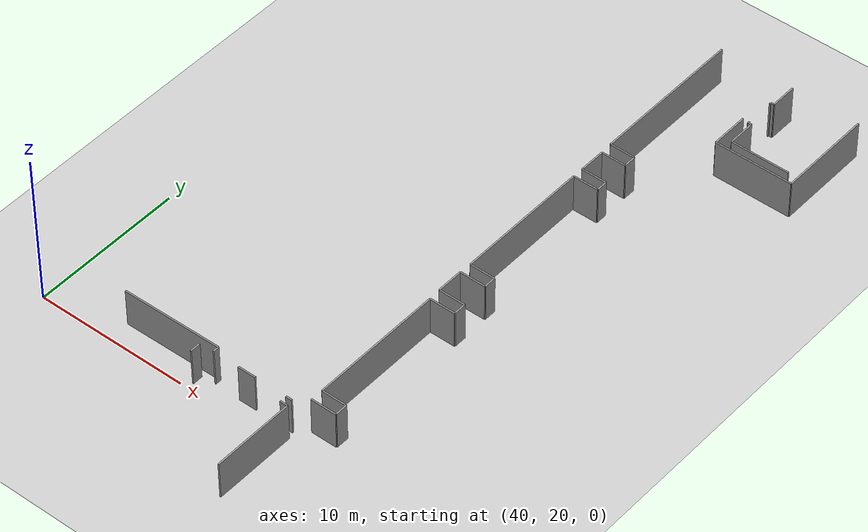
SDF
<sdf version="1.6">
 <world name="default">
  <model name="ground_plane">
   <static>1</static>
   <link name="link">
    <collision name="collision">
     <geometry><plane><normal>0 0 1</normal><size>100 100</size></plane></geometry>
     <surface><friction><ode><mu>100</mu><mu2>50</mu2></ode></friction></surface>
    </collision>
    <visual name="visual">
     <cast_shadows>0</cast_shadows>
     <geometry><plane><normal>0 0 1</normal><size>100 100</size></plane></geometry>
     <material>
      <script><uri>file://media/materials/scripts/gazebo.material</uri><name>Gazebo/Grey</name></script>
     </material>
    </visual>
   </link>
  </model>
  <model name="50036893">
   <static>1</static>
   <link name="Wall_304">
    <collision name="Wall_304_Collision">
     <geometry><box><size>10.129789433 0.1 2.5</size></box></geometry>
     <pose>5.06489471649 0 1.25 0 0 0</pose>
    </collision>
    <visual name="Wall_304_Visual">
     <pose>5.06489471649 0 1.25 0 0 0</pose>
     <geometry><box><size>10.129789433 0.1 2.5</size></box></geometry>
     <material>
      <script><uri>file://media/materials/scripts/gazebo.material</uri><name>Gazebo/Grey</name></script>
      <ambient>1 1 1 1</ambient>
     </material>
    </visual>
    <pose>131.90030244 -21.0097833461 0 0 0 1.57079632679</pose>
   </link>
   <link name="Wall_308">
    <collision name="Wall_308_Collision">
     <geometry><box><size>2.4933266547 0.1 2.5</size></box></geometry>
     <pose>1.24666332735 0 1.25 0 0 0</pose>
    </collision>
    <visual name="Wall_308_Visual">
     <pose>1.24666332735 0 1.25 0 0 0</pose>
     <geometry><box><size>2.4933266547 0.1 2.5</size></box></geometry>
     <material>
      <script><uri>file://media/materials/scripts/gazebo.material</uri><name>Gazebo/Grey</name></script>
      <ambient>1 1 1 1</ambient>
     </material>
    </visual>
    <pose>136.265082394 -14.6946746388 0 0 0 -1.57079632679</pose>
   </link>
   <link name="Wall_309">
    <collision name="Wall_309_Collision">
     <geometry><box><size>5.1586068718 0.1 2.5</size></box></geometry>
     <pose>2.5793034359 0 1.25 0 0 0</pose>
    </collision>
    <visual name="Wall_309_Visual">
     <pose>2.5793034359 0 1.25 0 0 0</pose>
     <geometry><box><size>5.1586068718 0.1 2.5</size></box></geometry>
     <material>
      <script><uri>file://media/materials/scripts/gazebo.material</uri><name>Gazebo/Grey</name></script>
      <ambient>1 1 1 1</ambient>
     </material>
    </visual>
    <pose>136.265082394 -17.1880012935 0 0 0 0.0</pose>
   </link>
   <link name="Wall_310">
    <collision name="Wall_310_Collision">
     <geometry><box><size>6.24992866971 0.1 2.5</size></box></geometry>
     <pose>3.12496433485 0 1.25 0 0 0</pose>
    </collision>
    <visual name="Wall_310_Visual">
     <pose>3.12496433485 0 1.25 0 0 0</pose>
     <geometry><box><size>6.24992866971 0.1 2.5</size></box></geometry>
     <material>
      <script><uri>file://media/materials/scripts/gazebo.material</uri><name>Gazebo/Grey</name></script>
      <ambient>1 1 1 1</ambient>
     </material>
    </visual>
    <pose>141.423689266 -17.1880012935 0 0 0 1.57079632679</pose>
   </link>
   <link name="Wall_352">
    <collision name="Wall_352_Collision">
     <geometry><box><size>1.70939087099 0.1 2.5</size></box></geometry>
     <pose>0.854695435495 0 1.25 0 0 0</pose>
    </collision>
    <visual name="Wall_352_Visual">
     <pose>0.854695435495 0 1.25 0 0 0</pose>
     <geometry><box><size>1.70939087099 0.1 2.5</size></box></geometry>
     <material>
      <script><uri>file://media/materials/scripts/gazebo.material</uri><name>Gazebo/Grey</name></script>
      <ambient>1 1 1 1</ambient>
     </material>
    </visual>
    <pose>131.880012935 -46.0754389191 0 0 0 0.0</pose>
   </link>
   <link name="Wall_353">
    <collision name="Wall_353_Collision">
     <geometry><box><size>0.822232226076 0.1 2.5</size></box></geometry>
     <pose>0.411116113038 0 1.25 0 0 0</pose>
    </collision>
    <visual name="Wall_353_Visual">
     <pose>0.411116113038 0 1.25 0 0 0</pose>
     <geometry><box><size>0.822232226076 0.1 2.5</size></box></geometry>
     <material>
      <script><uri>file://media/materials/scripts/gazebo.material</uri><name>Gazebo/Grey</name></script>
      <ambient>1 1 1 1</ambient>
     </material>
    </visual>
    <pose>133.589403806 -46.0754389191 0 0 0 1.57079632679</pose>
   </link>
   <link name="Wall_354">
    <collision name="Wall_354_Collision">
     <geometry><box><size>1.65613091804 0.1 2.5</size></box></geometry>
     <pose>0.828065459018 0 1.25 0 0 0</pose>
    </collision>
    <visual name="Wall_354_Visual">
     <pose>0.828065459018 0 1.25 0 0 0</pose>
     <geometry><box><size>1.65613091804 0.1 2.5</size></box></geometry>
     <material>
      <script><uri>file://media/materials/scripts/gazebo.material</uri><name>Gazebo/Grey</name></script>
      <ambient>1 1 1 1</ambient>
     </material>
    </visual>
    <pose>133.589403806 -45.253206693 0 0 0 3.14159265359</pose>
   </link>
   <link name="Wall_355">
    <collision name="Wall_355_Collision">
     <geometry><box><size>8.71510363499 0.1 2.5</size></box></geometry>
     <pose>4.3575518175 0 1.25 0 0 0</pose>
    </collision>
    <visual name="Wall_355_Visual">
     <pose>4.3575518175 0 1.25 0 0 0</pose>
     <geometry><box><size>8.71510363499 0.1 2.5</size></box></geometry>
     <material>
      <script><uri>file://media/materials/scripts/gazebo.material</uri><name>Gazebo/Grey</name></script>
      <ambient>1 1 1 1</ambient>
     </material>
    </visual>
    <pose>131.933272888 -45.253206693 0 0 0 1.57079632679</pose>
   </link>
   <link name="Wall_356">
    <collision name="Wall_356_Collision">
     <geometry><box><size>1.70178230628 0.1 2.5</size></box></geometry>
     <pose>0.850891153141 0 1.25 0 0 0</pose>
    </collision>
    <visual name="Wall_356_Visual">
     <pose>0.850891153141 0 1.25 0 0 0</pose>
     <geometry><box><size>1.70178230628 0.1 2.5</size></box></geometry>
     <material>
      <script><uri>file://media/materials/scripts/gazebo.material</uri><name>Gazebo/Grey</name></script>
      <ambient>1 1 1 1</ambient>
     </material>
    </visual>
    <pose>131.933272888 -36.538103058 0 0 0 0.0</pose>
   </link>
   <link name="Wall_357">
    <collision name="Wall_357_Collision">
     <geometry><box><size>0.824514795488 0.1 2.5</size></box></geometry>
     <pose>0.412257397744 0 1.25 0 0 0</pose>
    </collision>
    <visual name="Wall_357_Visual">
     <pose>0.412257397744 0 1.25 0 0 0</pose>
     <geometry><box><size>0.824514795488 0.1 2.5</size></box></geometry>
     <material>
      <script><uri>file://media/materials/scripts/gazebo.material</uri><name>Gazebo/Grey</name></script>
      <ambient>1 1 1 1</ambient>
     </material>
    </visual>
    <pose>133.635055194 -36.538103058 0 0 0 1.57079632679</pose>
   </link>
   <link name="Wall_358">
    <collision name="Wall_358_Collision">
     <geometry><box><size>1.74489750629 0.1 2.5</size></box></geometry>
     <pose>0.872448753146 0 1.25 0 0 0</pose>
    </collision>
    <visual name="Wall_358_Visual">
     <pose>0.872448753146 0 1.25 0 0 0</pose>
     <geometry><box><size>1.74489750629 0.1 2.5</size></box></geometry>
     <material>
      <script><uri>file://media/materials/scripts/gazebo.material</uri><name>Gazebo/Grey</name></script>
      <ambient>1 1 1 1</ambient>
     </material>
    </visual>
    <pose>133.635055194 -35.7135882625 0 0 0 3.14159265359</pose>
   </link>
   <link name="Wall_359">
    <collision name="Wall_359_Collision">
     <geometry><box><size>1.74515112512 0.1 2.5</size></box></geometry>
     <pose>0.872575562558 0 1.25 0 0 0</pose>
    </collision>
    <visual name="Wall_359_Visual">
     <pose>0.872575562558 0 1.25 0 0 0</pose>
     <geometry><box><size>1.74515112512 0.1 2.5</size></box></geometry>
     <material>
      <script><uri>file://media/materials/scripts/gazebo.material</uri><name>Gazebo/Grey</name></script>
      <ambient>1 1 1 1</ambient>
     </material>
    </visual>
    <pose>131.890157688 -35.7135882625 0 0 0 1.57079632679</pose>
   </link>
   <link name="Wall_360">
    <collision name="Wall_360_Collision">
     <geometry><box><size>1.70685468275 0.1 2.5</size></box></geometry>
     <pose>0.853427341377 0 1.25 0 0 0</pose>
    </collision>
    <visual name="Wall_360_Visual">
     <pose>0.853427341377 0 1.25 0 0 0</pose>
     <geometry><box><size>1.70685468275 0.1 2.5</size></box></geometry>
     <material>
      <script><uri>file://media/materials/scripts/gazebo.material</uri><name>Gazebo/Grey</name></script>
      <ambient>1 1 1 1</ambient>
     </material>
    </visual>
    <pose>131.890157688 -33.9684371374 0 0 0 0.0</pose>
   </link>
   <link name="Wall_361">
    <collision name="Wall_361_Collision">
     <geometry><box><size>0.786218353126 0.1 2.5</size></box></geometry>
     <pose>0.393109176563 0 1.25 0 0 0</pose>
    </collision>
    <visual name="Wall_361_Visual">
     <pose>0.393109176563 0 1.25 0 0 0</pose>
     <geometry><box><size>0.786218353126 0.1 2.5</size></box></geometry>
     <material>
      <script><uri>file://media/materials/scripts/gazebo.material</uri><name>Gazebo/Grey</name></script>
      <ambient>1 1 1 1</ambient>
     </material>
    </visual>
    <pose>133.59701237 -33.9684371374 0 0 0 1.57079632679</pose>
   </link>
   <link name="Wall_362">
    <collision name="Wall_362_Collision">
     <geometry><box><size>1.66881185922 0.1 2.5</size></box></geometry>
     <pose>0.834405929608 0 1.25 0 0 0</pose>
    </collision>
    <visual name="Wall_362_Visual">
     <pose>0.834405929608 0 1.25 0 0 0</pose>
     <geometry><box><size>1.66881185922 0.1 2.5</size></box></geometry>
     <material>
      <script><uri>file://media/materials/scripts/gazebo.material</uri><name>Gazebo/Grey</name></script>
      <ambient>1 1 1 1</ambient>
     </material>
    </visual>
    <pose>133.59701237 -33.1822187843 0 0 0 3.14159265359</pose>
   </link>
   <link name="Wall_363">
    <collision name="Wall_363_Collision">
     <geometry><box><size>8.87437625621 0.1 2.5</size></box></geometry>
     <pose>4.4371881281 0 1.25 0 0 0</pose>
    </collision>
    <visual name="Wall_363_Visual">
     <pose>4.4371881281 0 1.25 0 0 0</pose>
     <geometry><box><size>8.87437625621 0.1 2.5</size></box></geometry>
     <material>
      <script><uri>file://media/materials/scripts/gazebo.material</uri><name>Gazebo/Grey</name></script>
      <ambient>1 1 1 1</ambient>
     </material>
    </visual>
    <pose>131.928200511 -33.1822187843 0 0 0 1.57079632679</pose>
   </link>
   <link name="Wall_364">
    <collision name="Wall_364_Collision">
     <geometry><box><size>1.66627567098 0.1 2.5</size></box></geometry>
     <pose>0.83313783549 0 1.25 0 0 0</pose>
    </collision>
    <visual name="Wall_364_Visual">
     <pose>0.83313783549 0 1.25 0 0 0</pose>
     <geometry><box><size>1.66627567098 0.1 2.5</size></box></geometry>
     <material>
      <script><uri>file://media/materials/scripts/gazebo.material</uri><name>Gazebo/Grey</name></script>
      <ambient>1 1 1 1</ambient>
     </material>
    </visual>
    <pose>131.928200511 -24.3078425281 0 0 0 0.0</pose>
   </link>
   <link name="Wall_365">
    <collision name="Wall_365_Collision">
     <geometry><box><size>0.725096216641 0.1 2.5</size></box></geometry>
     <pose>0.362548108321 0 1.25 0 0 0</pose>
    </collision>
    <visual name="Wall_365_Visual">
     <pose>0.362548108321 0 1.25 0 0 0</pose>
     <geometry><box><size>0.725096216641 0.1 2.5</size></box></geometry>
     <material>
      <script><uri>file://media/materials/scripts/gazebo.material</uri><name>Gazebo/Grey</name></script>
      <ambient>1 1 1 1</ambient>
     </material>
    </visual>
    <pose>133.594476182 -24.3078425281 0 0 0 1.57079632679</pose>
   </link>
   <link name="Wall_366">
    <collision name="Wall_366_Collision">
     <geometry><box><size>1.6535947298 0.1 2.5</size></box></geometry>
     <pose>0.8267973649 0 1.25 0 0 0</pose>
    </collision>
    <visual name="Wall_366_Visual">
     <pose>0.8267973649 0 1.25 0 0 0</pose>
     <geometry><box><size>1.6535947298 0.1 2.5</size></box></geometry>
     <material>
      <script><uri>file://media/materials/scripts/gazebo.material</uri><name>Gazebo/Grey</name></script>
      <ambient>1 1 1 1</ambient>
     </material>
    </visual>
    <pose>133.594476182 -23.5827463114 0 0 0 3.14159265359</pose>
   </link>
   <link name="Wall_367">
    <collision name="Wall_367_Collision">
     <geometry><box><size>1.74007874864 0.1 2.5</size></box></geometry>
     <pose>0.870039374322 0 1.25 0 0 0</pose>
    </collision>
    <visual name="Wall_367_Visual">
     <pose>0.870039374322 0 1.25 0 0 0</pose>
     <geometry><box><size>1.74007874864 0.1 2.5</size></box></geometry>
     <material>
      <script><uri>file://media/materials/scripts/gazebo.material</uri><name>Gazebo/Grey</name></script>
      <ambient>1 1 1 1</ambient>
     </material>
    </visual>
    <pose>131.940881452 -23.5827463114 0 0 0 1.57079632679</pose>
   </link>
   <link name="Wall_368">
    <collision name="Wall_368_Collision">
     <geometry><box><size>1.62316047097 0.1 2.5</size></box></geometry>
     <pose>0.811580235485 0 1.25 0 0 0</pose>
    </collision>
    <visual name="Wall_368_Visual">
     <pose>0.811580235485 0 1.25 0 0 0</pose>
     <geometry><box><size>1.62316047097 0.1 2.5</size></box></geometry>
     <material>
      <script><uri>file://media/materials/scripts/gazebo.material</uri><name>Gazebo/Grey</name></script>
      <ambient>1 1 1 1</ambient>
     </material>
    </visual>
    <pose>131.940881452 -21.8426675628 0 0 0 0.0</pose>
   </link>
   <link name="Wall_369">
    <collision name="Wall_369_Collision">
     <geometry><box><size>0.812087473132 0.1 2.5</size></box></geometry>
     <pose>0.406043736566 0 1.25 0 0 0</pose>
    </collision>
    <visual name="Wall_369_Visual">
     <pose>0.406043736566 0 1.25 0 0 0</pose>
     <geometry><box><size>0.812087473132 0.1 2.5</size></box></geometry>
     <material>
      <script><uri>file://media/materials/scripts/gazebo.material</uri><name>Gazebo/Grey</name></script>
      <ambient>1 1 1 1</ambient>
     </material>
    </visual>
    <pose>133.564041923 -21.8426675628 0 0 0 1.57079632679</pose>
   </link>
   <link name="Wall_370">
    <collision name="Wall_370_Collision">
     <geometry><box><size>1.66386945731 0.1 2.5</size></box></geometry>
     <pose>0.831934728657 0 1.25 0 0 0</pose>
    </collision>
    <visual name="Wall_370_Visual">
     <pose>0.831934728657 0 1.25 0 0 0</pose>
     <geometry><box><size>1.66386945731 0.1 2.5</size></box></geometry>
     <material>
      <script><uri>file://media/materials/scripts/gazebo.material</uri><name>Gazebo/Grey</name></script>
      <ambient>1 1 1 1</ambient>
     </material>
    </visual>
    <pose>133.564041923 -21.0305800897 0 0 0 3.12909330457</pose>
   </link>
   <link name="Wall_462">
    <collision name="Wall_462_Collision">
     <geometry><box><size>0.502165270706 0.1 2.5</size></box></geometry>
     <pose>0.251082635353 0 1.25 0 0 0</pose>
    </collision>
    <visual name="Wall_462_Visual">
     <pose>0.251082635353 0 1.25 0 0 0</pose>
     <geometry><box><size>0.502165270706 0.1 2.5</size></box></geometry>
     <material>
      <script><uri>file://media/materials/scripts/gazebo.material</uri><name>Gazebo/Grey</name></script>
      <ambient>1 1 1 1</ambient>
     </material>
    </visual>
    <pose>130.753945358 -47.2048035405 0 0 0 0.0</pose>
   </link>
   <link name="Wall_463">
    <collision name="Wall_463_Collision">
     <geometry><box><size>5.33588642949 0.1 2.5</size></box></geometry>
     <pose>2.66794321475 0 1.25 0 0 0</pose>
    </collision>
    <visual name="Wall_463_Visual">
     <pose>2.66794321475 0 1.25 0 0 0</pose>
     <geometry><box><size>5.33588642949 0.1 2.5</size></box></geometry>
     <material>
      <script><uri>file://media/materials/scripts/gazebo.material</uri><name>Gazebo/Grey</name></script>
      <ambient>1 1 1 1</ambient>
     </material>
    </visual>
    <pose>131.256110629 -47.2048035405 0 0 0 -1.57079632679</pose>
   </link>
   <link name="Wall_471">
    <collision name="Wall_471_Collision">
     <geometry><box><size>0.415934870686 0.1 2.5</size></box></geometry>
     <pose>0.207967435343 0 1.25 0 0 0</pose>
    </collision>
    <visual name="Wall_471_Visual">
     <pose>0.207967435343 0 1.25 0 0 0</pose>
     <geometry><box><size>0.415934870686 0.1 2.5</size></box></geometry>
     <material>
      <script><uri>file://media/materials/scripts/gazebo.material</uri><name>Gazebo/Grey</name></script>
      <ambient>1 1 1 1</ambient>
     </material>
    </visual>
    <pose>131.169880229 -46.7624923122 0 0 0 3.14159265359</pose>
   </link>
   <link name="Wall_472">
    <collision name="Wall_472_Collision">
     <geometry><box><size>1.1945446591 0.1 2.5</size></box></geometry>
     <pose>0.597272329552 0 1.25 0 0 0</pose>
    </collision>
    <visual name="Wall_472_Visual">
     <pose>0.597272329552 0 1.25 0 0 0</pose>
     <geometry><box><size>1.1945446591 0.1 2.5</size></box></geometry>
     <material>
      <script><uri>file://media/materials/scripts/gazebo.material</uri><name>Gazebo/Grey</name></script>
      <ambient>1 1 1 1</ambient>
     </material>
    </visual>
    <pose>128.633691993 -46.7624923122 0 0 0 3.14159265359</pose>
   </link>
   <link name="Wall_473">
    <collision name="Wall_473_Collision">
     <geometry><box><size>0.390826607151 0.1 2.5</size></box></geometry>
     <pose>0.195413303575 0 1.25 0 0 0</pose>
    </collision>
    <visual name="Wall_473_Visual">
     <pose>0.195413303575 0 1.25 0 0 0</pose>
     <geometry><box><size>0.390826607151 0.1 2.5</size></box></geometry>
     <material>
      <script><uri>file://media/materials/scripts/gazebo.material</uri><name>Gazebo/Grey</name></script>
      <ambient>1 1 1 1</ambient>
     </material>
    </visual>
    <pose>125.694249827 -46.7624923122 0 0 0 1.57079632679</pose>
   </link>
   <link name="Wall_474">
    <collision name="Wall_474_Collision">
     <geometry><box><size>6.59437978097 0.1 2.5</size></box></geometry>
     <pose>3.29718989048 0 1.25 0 0 0</pose>
    </collision>
    <visual name="Wall_474_Visual">
     <pose>3.29718989048 0 1.25 0 0 0</pose>
     <geometry><box><size>6.59437978097 0.1 2.5</size></box></geometry>
     <material>
      <script><uri>file://media/materials/scripts/gazebo.material</uri><name>Gazebo/Grey</name></script>
      <ambient>1 1 1 1</ambient>
     </material>
    </visual>
    <pose>125.694249827 -46.371665705 0 0 0 -3.13220831369</pose>
   </link>
   <link name="Wall_477">
    <collision name="Wall_477_Collision">
     <geometry><box><size>0.667017506039 0.1 2.5</size></box></geometry>
     <pose>0.33350875302 0 1.25 0 0 0</pose>
    </collision>
    <visual name="Wall_477_Visual">
     <pose>0.33350875302 0 1.25 0 0 0</pose>
     <geometry><box><size>0.667017506039 0.1 2.5</size></box></geometry>
     <material>
      <script><uri>file://media/materials/scripts/gazebo.material</uri><name>Gazebo/Grey</name></script>
      <ambient>1 1 1 1</ambient>
     </material>
    </visual>
    <pose>124.763468745 -46.827418731 0 0 0 -1.57079632679</pose>
   </link>
   <link name="Wall_512">
    <collision name="Wall_512_Collision">
     <geometry><box><size>1.79054889454 0.1 2.5</size></box></geometry>
     <pose>0.895274447269 0 1.25 0 0 0</pose>
    </collision>
    <visual name="Wall_512_Visual">
     <pose>0.895274447269 0 1.25 0 0 0</pose>
     <geometry><box><size>1.79054889454 0.1 2.5</size></box></geometry>
     <material>
      <script><uri>file://media/materials/scripts/gazebo.material</uri><name>Gazebo/Grey</name></script>
      <ambient>1 1 1 1</ambient>
     </material>
    </visual>
    <pose>136.906738018 -16.5838812557 0 0 0 1.57079632679</pose>
   </link>
   <link name="Wall_513">
    <collision name="Wall_513_Collision">
     <geometry><box><size>0.22825694123 0.1 2.5</size></box></geometry>
     <pose>0.114128470615 0 1.25 0 0 0</pose>
    </collision>
    <visual name="Wall_513_Visual">
     <pose>0.114128470615 0 1.25 0 0 0</pose>
     <geometry><box><size>0.22825694123 0.1 2.5</size></box></geometry>
     <material>
      <script><uri>file://media/materials/scripts/gazebo.material</uri><name>Gazebo/Grey</name></script>
      <ambient>1 1 1 1</ambient>
     </material>
    </visual>
    <pose>136.906738018 -14.7933323611 0 0 0 3.14159265359</pose>
   </link>
   <link name="Wall_514">
    <collision name="Wall_514_Collision">
     <geometry><box><size>0.126048555324 0.1 2.5</size></box></geometry>
     <pose>0.0630242776619 0 1.25 0 0 0</pose>
    </collision>
    <visual name="Wall_514_Visual">
     <pose>0.0630242776619 0 1.25 0 0 0</pose>
     <geometry><box><size>0.126048555324 0.1 2.5</size></box></geometry>
     <material>
      <script><uri>file://media/materials/scripts/gazebo.material</uri><name>Gazebo/Grey</name></script>
      <ambient>1 1 1 1</ambient>
     </material>
    </visual>
    <pose>136.678481077 -14.7933323611 0 0 0 1.57079632679</pose>
   </link>
   <link name="Wall_515">
    <collision name="Wall_515_Collision">
     <geometry><box><size>0.109056094143 0.1 2.5</size></box></geometry>
     <pose>0.0545280470716 0 1.25 0 0 0</pose>
    </collision>
    <visual name="Wall_515_Visual">
     <pose>0.0545280470716 0 1.25 0 0 0</pose>
     <geometry><box><size>0.109056094143 0.1 2.5</size></box></geometry>
     <material>
      <script><uri>file://media/materials/scripts/gazebo.material</uri><name>Gazebo/Grey</name></script>
      <ambient>1 1 1 1</ambient>
     </material>
    </visual>
    <pose>136.678481077 -12.7816278524 0 0 0 1.57079632679</pose>
   </link>
   <link name="Wall_516">
    <collision name="Wall_516_Collision">
     <geometry><box><size>0.220648376522 0.1 2.5</size></box></geometry>
     <pose>0.110324188261 0 1.25 0 0 0</pose>
    </collision>
    <visual name="Wall_516_Visual">
     <pose>0.110324188261 0 1.25 0 0 0</pose>
     <geometry><box><size>0.220648376522 0.1 2.5</size></box></geometry>
     <material>
      <script><uri>file://media/materials/scripts/gazebo.material</uri><name>Gazebo/Grey</name></script>
      <ambient>1 1 1 1</ambient>
     </material>
    </visual>
    <pose>136.678481077 -12.6725717583 0 0 0 0.0</pose>
   </link>
   <link name="Wall_517">
    <collision name="Wall_517_Collision">
     <geometry><box><size>1.739571511 0.1 2.5</size></box></geometry>
     <pose>0.869785755499 0 1.25 0 0 0</pose>
    </collision>
    <visual name="Wall_517_Visual">
     <pose>0.869785755499 0 1.25 0 0 0</pose>
     <geometry><box><size>1.739571511 0.1 2.5</size></box></geometry>
     <material>
      <script><uri>file://media/materials/scripts/gazebo.material</uri><name>Gazebo/Grey</name></script>
      <ambient>1 1 1 1</ambient>
     </material>
    </visual>
    <pose>136.899129453 -12.6725717583 0 0 0 1.57079632679</pose>
   </link>
   <link name="Wall_520">
    <collision name="Wall_520_Collision">
     <geometry><box><size>3.88544090714 0.1 2.5</size></box></geometry>
     <pose>1.94272045357 0 1.25 0 0 0</pose>
    </collision>
    <visual name="Wall_520_Visual">
     <pose>1.94272045357 0 1.25 0 0 0</pose>
     <geometry><box><size>3.88544090714 0.1 2.5</size></box></geometry>
     <material>
      <script><uri>file://media/materials/scripts/gazebo.material</uri><name>Gazebo/Grey</name></script>
      <ambient>1 1 1 1</ambient>
     </material>
    </visual>
    <pose>140.792178395 -16.5859102063 0 0 0 3.14107046043</pose>
   </link>
   <pose>-74.25 67.8925905261 0 0 0 0</pose>
  </model>
 </world>
</sdf>
